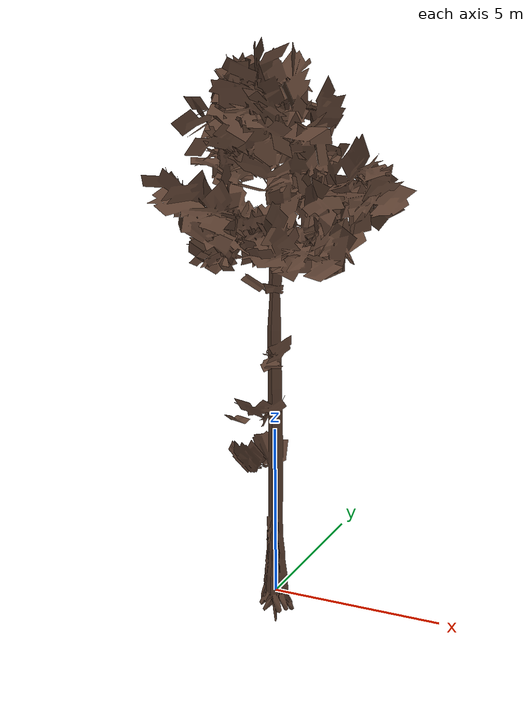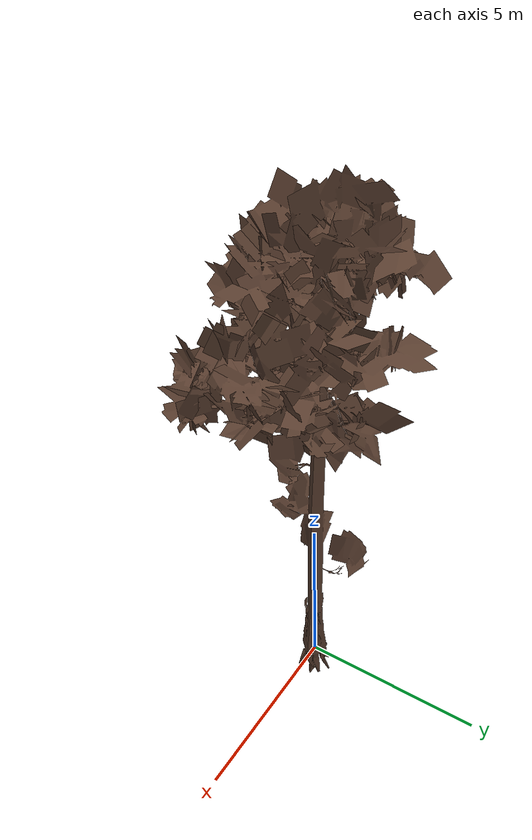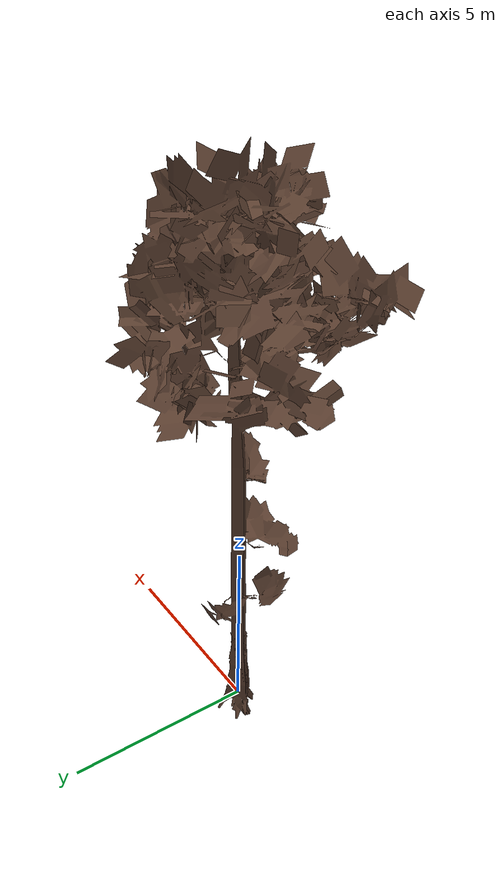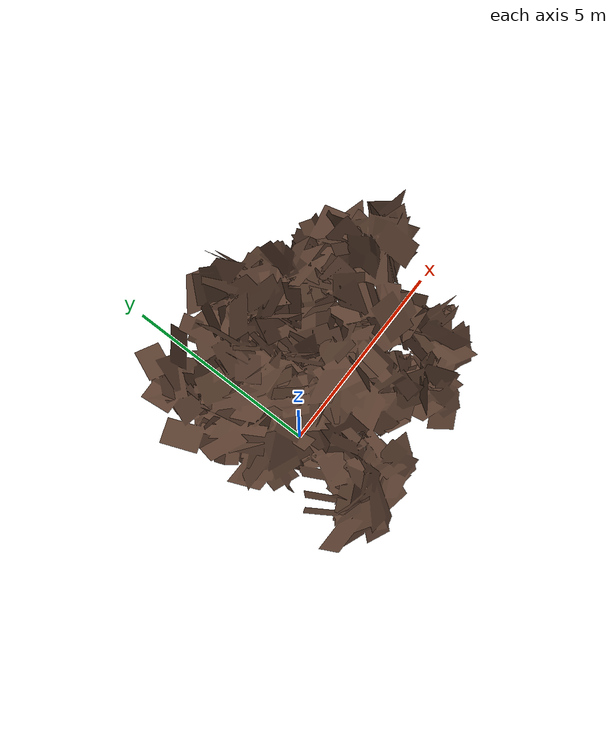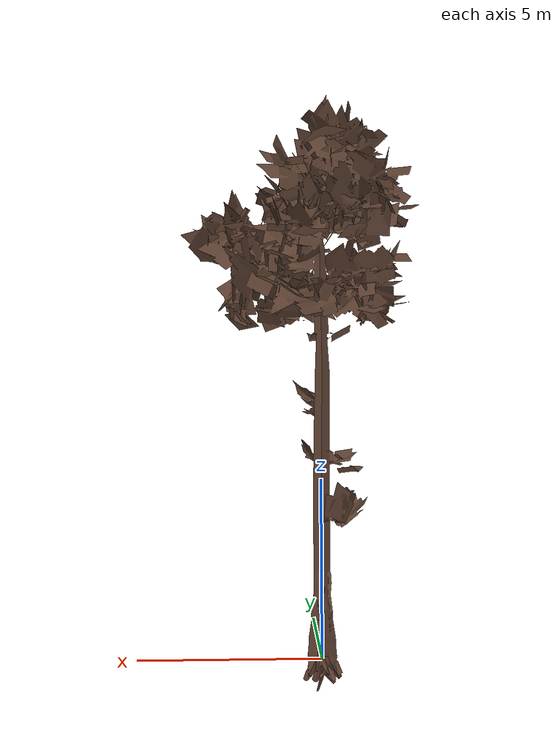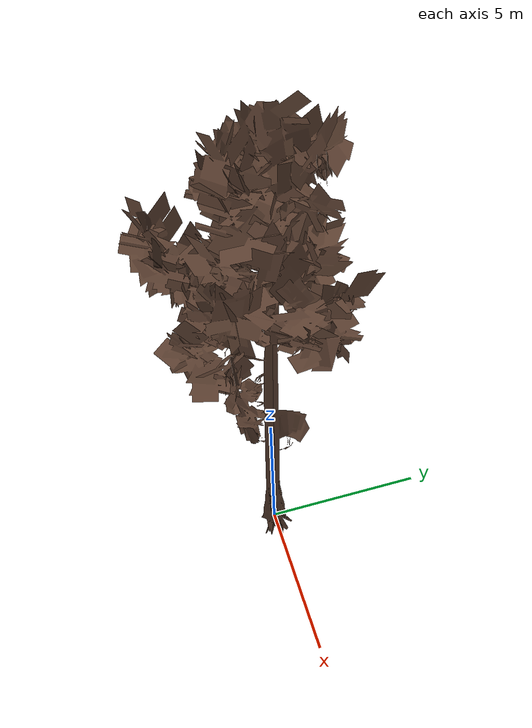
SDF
<?xml version="1.0" ?>
<sdf version="1.5">
  <model name="tall_pine">
    <static>true</static>
    <link name="link">
      <collision name='collision_trunk'>
        <pose frame=''>0 0 4.5 0 -0 0</pose>
        <geometry>
          <cylinder>
            <radius>0.4</radius>
            <length>9</length>
          </cylinder>
        </geometry>
      </collision>
      <collision name='collision_top'>
        <pose>0 0 12.25 0 -0 0</pose>
        <geometry>
          <box>
            <size>5 6 6.5</size>
          </box>
        </geometry>
      </collision>

      <visual name="visual">
        <pose>0 0 0 0 0 0</pose>
        <geometry>
          <mesh>
            <uri>model://tall_pine/meshes/tall_pine_lowpoly.dae</uri>
          </mesh>
        </geometry>
        <material>
          <script>
            <uri>model://tall_pine/materials/scripts</uri>
            <uri>model://tall_pine/materials/textures</uri>
            <name>trees/tall_pine</name>
          </script>
        </material>
      </visual>

    </link>
  </model>
</sdf>
